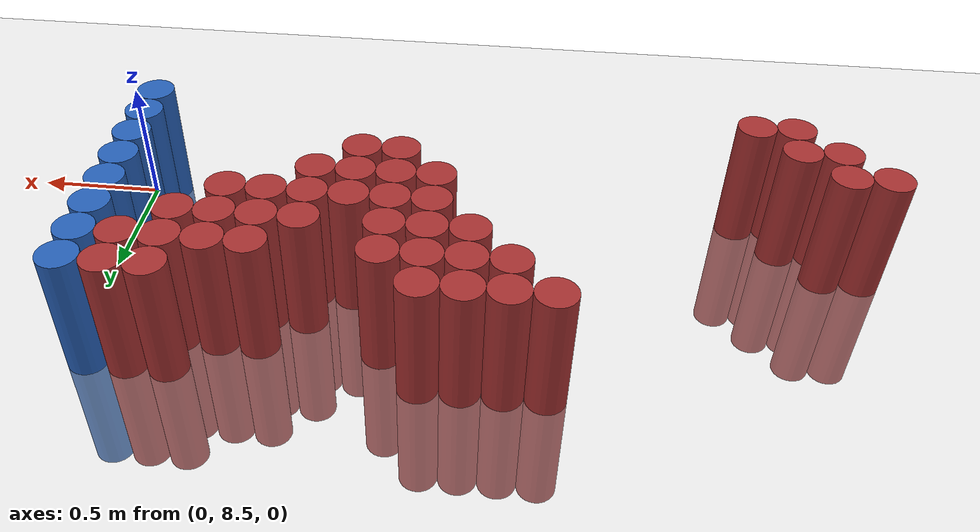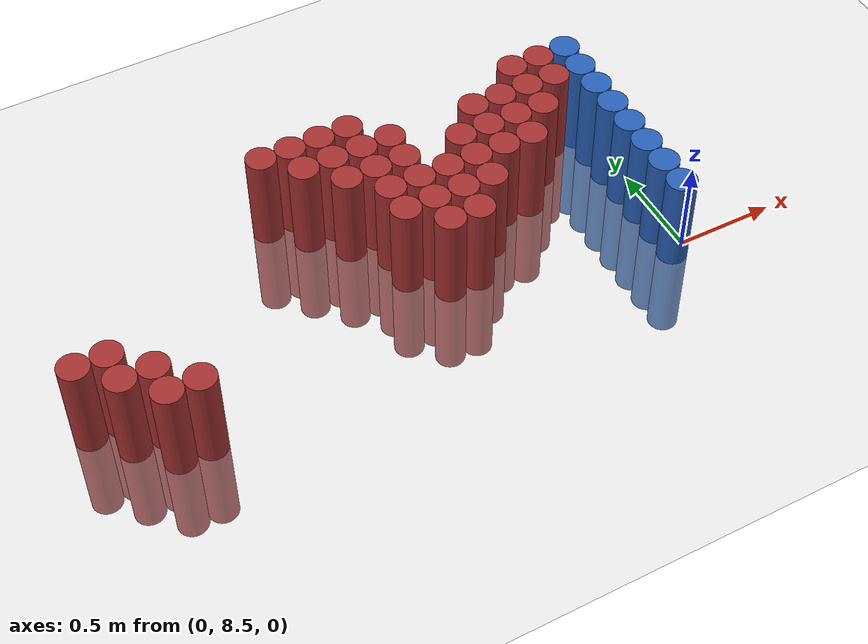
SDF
<sdf version="1.6">
 <world name="default">
  <model name="ground_plane">
   <static>1</static>
   <link name="link">
    <collision name="collision">
     <geometry><plane><normal>0 0 1</normal><size>100 100</size></plane></geometry>
     <surface><friction><ode><mu>100</mu><mu2>50</mu2></ode></friction></surface>
    </collision>
    <visual name="visual">
     <cast_shadows>0</cast_shadows>
     <geometry><plane><normal>0 0 1</normal><size>100 100</size></plane></geometry>
     <material>
      <script><uri>file://media/materials/scripts/gazebo.material</uri><name>Gazebo/Grey</name></script>
     </material>
    </visual>
   </link>
  </model>
  <model name="unit_cylinder_171">
   <static>1</static>
   <pose>-2.925000 8.775000 0.000000 0.000000 0.000000 0.000000</pose>
   <link name="link">
    <inertial>
     <mass>1</mass>
     <inertia><ixx>0.145833</ixx><ixy>0</ixy><ixz>0</ixz><iyy>0.145833</iyy><iyz>0</iyz><izz>0.125</izz></inertia>
    </inertial>
    <collision name="collision">
     <geometry><cylinder><radius>0.075000</radius><length>1</length></cylinder></geometry>
    </collision>
    <visual name="visual">
     <geometry><cylinder><radius>0.075000</radius><length>1</length></cylinder></geometry>
     <material>
      <ambient>0.648000 0.192000 0.192000 1</ambient>
      <diffuse>0.648000 0.192000 0.192000 1</diffuse>
     </material>
     <material>
      <script><name>Gazebo/Grey</name><uri>file://media/materials/scripts/gazebo.material</uri></script>
     </material>
    </visual>
   </link>
  </model>
  <model name="unit_cylinder_173">
   <static>1</static>
   <pose>-2.775000 8.625000 0.000000 0.000000 0.000000 0.000000</pose>
   <link name="link">
    <inertial>
     <mass>1</mass>
     <inertia><ixx>0.145833</ixx><ixy>0</ixy><ixz>0</ixz><iyy>0.145833</iyy><iyz>0</iyz><izz>0.125</izz></inertia>
    </inertial>
    <collision name="collision">
     <geometry><cylinder><radius>0.075000</radius><length>1</length></cylinder></geometry>
    </collision>
    <visual name="visual">
     <geometry><cylinder><radius>0.075000</radius><length>1</length></cylinder></geometry>
     <material>
      <ambient>0.648000 0.192000 0.192000 1</ambient>
      <diffuse>0.648000 0.192000 0.192000 1</diffuse>
     </material>
     <material>
      <script><name>Gazebo/Grey</name><uri>file://media/materials/scripts/gazebo.material</uri></script>
     </material>
    </visual>
   </link>
  </model>
  <model name="unit_cylinder_174">
   <static>1</static>
   <pose>-2.775000 8.775000 0.000000 0.000000 0.000000 0.000000</pose>
   <link name="link">
    <inertial>
     <mass>1</mass>
     <inertia><ixx>0.145833</ixx><ixy>0</ixy><ixz>0</ixz><iyy>0.145833</iyy><iyz>0</iyz><izz>0.125</izz></inertia>
    </inertial>
    <collision name="collision">
     <geometry><cylinder><radius>0.075000</radius><length>1</length></cylinder></geometry>
    </collision>
    <visual name="visual">
     <geometry><cylinder><radius>0.075000</radius><length>1</length></cylinder></geometry>
     <material>
      <ambient>0.648000 0.192000 0.192000 1</ambient>
      <diffuse>0.648000 0.192000 0.192000 1</diffuse>
     </material>
     <material>
      <script><name>Gazebo/Grey</name><uri>file://media/materials/scripts/gazebo.material</uri></script>
     </material>
    </visual>
   </link>
  </model>
  <model name="unit_cylinder_177">
   <static>1</static>
   <pose>-2.625000 8.475000 0.000000 0.000000 0.000000 0.000000</pose>
   <link name="link">
    <inertial>
     <mass>1</mass>
     <inertia><ixx>0.145833</ixx><ixy>0</ixy><ixz>0</ixz><iyy>0.145833</iyy><iyz>0</iyz><izz>0.125</izz></inertia>
    </inertial>
    <collision name="collision">
     <geometry><cylinder><radius>0.075000</radius><length>1</length></cylinder></geometry>
    </collision>
    <visual name="visual">
     <geometry><cylinder><radius>0.075000</radius><length>1</length></cylinder></geometry>
     <material>
      <ambient>0.648000 0.192000 0.192000 1</ambient>
      <diffuse>0.648000 0.192000 0.192000 1</diffuse>
     </material>
     <material>
      <script><name>Gazebo/Grey</name><uri>file://media/materials/scripts/gazebo.material</uri></script>
     </material>
    </visual>
   </link>
  </model>
  <model name="unit_cylinder_178">
   <static>1</static>
   <pose>-2.625000 8.625000 0.000000 0.000000 0.000000 0.000000</pose>
   <link name="link">
    <inertial>
     <mass>1</mass>
     <inertia><ixx>0.145833</ixx><ixy>0</ixy><ixz>0</ixz><iyy>0.145833</iyy><iyz>0</iyz><izz>0.125</izz></inertia>
    </inertial>
    <collision name="collision">
     <geometry><cylinder><radius>0.075000</radius><length>1</length></cylinder></geometry>
    </collision>
    <visual name="visual">
     <geometry><cylinder><radius>0.075000</radius><length>1</length></cylinder></geometry>
     <material>
      <ambient>0.648000 0.192000 0.192000 1</ambient>
      <diffuse>0.648000 0.192000 0.192000 1</diffuse>
     </material>
     <material>
      <script><name>Gazebo/Grey</name><uri>file://media/materials/scripts/gazebo.material</uri></script>
     </material>
    </visual>
   </link>
  </model>
  <model name="unit_cylinder_186">
   <static>1</static>
   <pose>-2.475000 8.475000 0.000000 0.000000 0.000000 0.000000</pose>
   <link name="link">
    <inertial>
     <mass>1</mass>
     <inertia><ixx>0.145833</ixx><ixy>0</ixy><ixz>0</ixz><iyy>0.145833</iyy><iyz>0</iyz><izz>0.125</izz></inertia>
    </inertial>
    <collision name="collision">
     <geometry><cylinder><radius>0.075000</radius><length>1</length></cylinder></geometry>
    </collision>
    <visual name="visual">
     <geometry><cylinder><radius>0.075000</radius><length>1</length></cylinder></geometry>
     <material>
      <ambient>0.648000 0.192000 0.192000 1</ambient>
      <diffuse>0.648000 0.192000 0.192000 1</diffuse>
     </material>
     <material>
      <script><name>Gazebo/Grey</name><uri>file://media/materials/scripts/gazebo.material</uri></script>
     </material>
    </visual>
   </link>
  </model>
  <model name="unit_cylinder_210">
   <static>1</static>
   <pose>-1.725000 9.525000 0.000000 0.000000 0.000000 0.000000</pose>
   <link name="link">
    <inertial>
     <mass>1</mass>
     <inertia><ixx>0.145833</ixx><ixy>0</ixy><ixz>0</ixz><iyy>0.145833</iyy><iyz>0</iyz><izz>0.125</izz></inertia>
    </inertial>
    <collision name="collision">
     <geometry><cylinder><radius>0.075000</radius><length>1</length></cylinder></geometry>
    </collision>
    <visual name="visual">
     <geometry><cylinder><radius>0.075000</radius><length>1</length></cylinder></geometry>
     <material>
      <ambient>0.648000 0.192000 0.192000 1</ambient>
      <diffuse>0.648000 0.192000 0.192000 1</diffuse>
     </material>
     <material>
      <script><name>Gazebo/Grey</name><uri>file://media/materials/scripts/gazebo.material</uri></script>
     </material>
    </visual>
   </link>
  </model>
  <model name="unit_cylinder_216">
   <static>1</static>
   <pose>-1.575000 9.375000 0.000000 0.000000 0.000000 0.000000</pose>
   <link name="link">
    <inertial>
     <mass>1</mass>
     <inertia><ixx>0.145833</ixx><ixy>0</ixy><ixz>0</ixz><iyy>0.145833</iyy><iyz>0</iyz><izz>0.125</izz></inertia>
    </inertial>
    <collision name="collision">
     <geometry><cylinder><radius>0.075000</radius><length>1</length></cylinder></geometry>
    </collision>
    <visual name="visual">
     <geometry><cylinder><radius>0.075000</radius><length>1</length></cylinder></geometry>
     <material>
      <ambient>0.648000 0.192000 0.192000 1</ambient>
      <diffuse>0.648000 0.192000 0.192000 1</diffuse>
     </material>
     <material>
      <script><name>Gazebo/Grey</name><uri>file://media/materials/scripts/gazebo.material</uri></script>
     </material>
    </visual>
   </link>
  </model>
  <model name="unit_cylinder_217">
   <static>1</static>
   <pose>-1.575000 9.525000 0.000000 0.000000 0.000000 0.000000</pose>
   <link name="link">
    <inertial>
     <mass>1</mass>
     <inertia><ixx>0.145833</ixx><ixy>0</ixy><ixz>0</ixz><iyy>0.145833</iyy><iyz>0</iyz><izz>0.125</izz></inertia>
    </inertial>
    <collision name="collision">
     <geometry><cylinder><radius>0.075000</radius><length>1</length></cylinder></geometry>
    </collision>
    <visual name="visual">
     <geometry><cylinder><radius>0.075000</radius><length>1</length></cylinder></geometry>
     <material>
      <ambient>0.648000 0.192000 0.192000 1</ambient>
      <diffuse>0.648000 0.192000 0.192000 1</diffuse>
     </material>
     <material>
      <script><name>Gazebo/Grey</name><uri>file://media/materials/scripts/gazebo.material</uri></script>
     </material>
    </visual>
   </link>
  </model>
  <model name="unit_cylinder_221">
   <static>1</static>
   <pose>-1.425000 9.225000 0.000000 0.000000 0.000000 0.000000</pose>
   <link name="link">
    <inertial>
     <mass>1</mass>
     <inertia><ixx>0.145833</ixx><ixy>0</ixy><ixz>0</ixz><iyy>0.145833</iyy><iyz>0</iyz><izz>0.125</izz></inertia>
    </inertial>
    <collision name="collision">
     <geometry><cylinder><radius>0.075000</radius><length>1</length></cylinder></geometry>
    </collision>
    <visual name="visual">
     <geometry><cylinder><radius>0.075000</radius><length>1</length></cylinder></geometry>
     <material>
      <ambient>0.648000 0.192000 0.192000 1</ambient>
      <diffuse>0.648000 0.192000 0.192000 1</diffuse>
     </material>
     <material>
      <script><name>Gazebo/Grey</name><uri>file://media/materials/scripts/gazebo.material</uri></script>
     </material>
    </visual>
   </link>
  </model>
  <model name="unit_cylinder_222">
   <static>1</static>
   <pose>-1.425000 9.375000 0.000000 0.000000 0.000000 0.000000</pose>
   <link name="link">
    <inertial>
     <mass>1</mass>
     <inertia><ixx>0.145833</ixx><ixy>0</ixy><ixz>0</ixz><iyy>0.145833</iyy><iyz>0</iyz><izz>0.125</izz></inertia>
    </inertial>
    <collision name="collision">
     <geometry><cylinder><radius>0.075000</radius><length>1</length></cylinder></geometry>
    </collision>
    <visual name="visual">
     <geometry><cylinder><radius>0.075000</radius><length>1</length></cylinder></geometry>
     <material>
      <ambient>0.648000 0.192000 0.192000 1</ambient>
      <diffuse>0.648000 0.192000 0.192000 1</diffuse>
     </material>
     <material>
      <script><name>Gazebo/Grey</name><uri>file://media/materials/scripts/gazebo.material</uri></script>
     </material>
    </visual>
   </link>
  </model>
  <model name="unit_cylinder_223">
   <static>1</static>
   <pose>-1.425000 9.525000 0.000000 0.000000 0.000000 0.000000</pose>
   <link name="link">
    <inertial>
     <mass>1</mass>
     <inertia><ixx>0.145833</ixx><ixy>0</ixy><ixz>0</ixz><iyy>0.145833</iyy><iyz>0</iyz><izz>0.125</izz></inertia>
    </inertial>
    <collision name="collision">
     <geometry><cylinder><radius>0.075000</radius><length>1</length></cylinder></geometry>
    </collision>
    <visual name="visual">
     <geometry><cylinder><radius>0.075000</radius><length>1</length></cylinder></geometry>
     <material>
      <ambient>0.648000 0.192000 0.192000 1</ambient>
      <diffuse>0.648000 0.192000 0.192000 1</diffuse>
     </material>
     <material>
      <script><name>Gazebo/Grey</name><uri>file://media/materials/scripts/gazebo.material</uri></script>
     </material>
    </visual>
   </link>
  </model>
  <model name="unit_cylinder_224">
   <static>1</static>
   <pose>-1.275000 8.925000 0.000000 0.000000 0.000000 0.000000</pose>
   <link name="link">
    <inertial>
     <mass>1</mass>
     <inertia><ixx>0.145833</ixx><ixy>0</ixy><ixz>0</ixz><iyy>0.145833</iyy><iyz>0</iyz><izz>0.125</izz></inertia>
    </inertial>
    <collision name="collision">
     <geometry><cylinder><radius>0.075000</radius><length>1</length></cylinder></geometry>
    </collision>
    <visual name="visual">
     <geometry><cylinder><radius>0.075000</radius><length>1</length></cylinder></geometry>
     <material>
      <ambient>0.648000 0.192000 0.192000 1</ambient>
      <diffuse>0.648000 0.192000 0.192000 1</diffuse>
     </material>
     <material>
      <script><name>Gazebo/Grey</name><uri>file://media/materials/scripts/gazebo.material</uri></script>
     </material>
    </visual>
   </link>
  </model>
  <model name="unit_cylinder_225">
   <static>1</static>
   <pose>-1.275000 9.075000 0.000000 0.000000 0.000000 0.000000</pose>
   <link name="link">
    <inertial>
     <mass>1</mass>
     <inertia><ixx>0.145833</ixx><ixy>0</ixy><ixz>0</ixz><iyy>0.145833</iyy><iyz>0</iyz><izz>0.125</izz></inertia>
    </inertial>
    <collision name="collision">
     <geometry><cylinder><radius>0.075000</radius><length>1</length></cylinder></geometry>
    </collision>
    <visual name="visual">
     <geometry><cylinder><radius>0.075000</radius><length>1</length></cylinder></geometry>
     <material>
      <ambient>0.648000 0.192000 0.192000 1</ambient>
      <diffuse>0.648000 0.192000 0.192000 1</diffuse>
     </material>
     <material>
      <script><name>Gazebo/Grey</name><uri>file://media/materials/scripts/gazebo.material</uri></script>
     </material>
    </visual>
   </link>
  </model>
  <model name="unit_cylinder_226">
   <static>1</static>
   <pose>-1.275000 9.225000 0.000000 0.000000 0.000000 0.000000</pose>
   <link name="link">
    <inertial>
     <mass>1</mass>
     <inertia><ixx>0.145833</ixx><ixy>0</ixy><ixz>0</ixz><iyy>0.145833</iyy><iyz>0</iyz><izz>0.125</izz></inertia>
    </inertial>
    <collision name="collision">
     <geometry><cylinder><radius>0.075000</radius><length>1</length></cylinder></geometry>
    </collision>
    <visual name="visual">
     <geometry><cylinder><radius>0.075000</radius><length>1</length></cylinder></geometry>
     <material>
      <ambient>0.648000 0.192000 0.192000 1</ambient>
      <diffuse>0.648000 0.192000 0.192000 1</diffuse>
     </material>
     <material>
      <script><name>Gazebo/Grey</name><uri>file://media/materials/scripts/gazebo.material</uri></script>
     </material>
    </visual>
   </link>
  </model>
  <model name="unit_cylinder_227">
   <static>1</static>
   <pose>-1.275000 9.375000 0.000000 0.000000 0.000000 0.000000</pose>
   <link name="link">
    <inertial>
     <mass>1</mass>
     <inertia><ixx>0.145833</ixx><ixy>0</ixy><ixz>0</ixz><iyy>0.145833</iyy><iyz>0</iyz><izz>0.125</izz></inertia>
    </inertial>
    <collision name="collision">
     <geometry><cylinder><radius>0.075000</radius><length>1</length></cylinder></geometry>
    </collision>
    <visual name="visual">
     <geometry><cylinder><radius>0.075000</radius><length>1</length></cylinder></geometry>
     <material>
      <ambient>0.648000 0.192000 0.192000 1</ambient>
      <diffuse>0.648000 0.192000 0.192000 1</diffuse>
     </material>
     <material>
      <script><name>Gazebo/Grey</name><uri>file://media/materials/scripts/gazebo.material</uri></script>
     </material>
    </visual>
   </link>
  </model>
  <model name="unit_cylinder_228">
   <static>1</static>
   <pose>-1.275000 9.525000 0.000000 0.000000 0.000000 0.000000</pose>
   <link name="link">
    <inertial>
     <mass>1</mass>
     <inertia><ixx>0.145833</ixx><ixy>0</ixy><ixz>0</ixz><iyy>0.145833</iyy><iyz>0</iyz><izz>0.125</izz></inertia>
    </inertial>
    <collision name="collision">
     <geometry><cylinder><radius>0.075000</radius><length>1</length></cylinder></geometry>
    </collision>
    <visual name="visual">
     <geometry><cylinder><radius>0.075000</radius><length>1</length></cylinder></geometry>
     <material>
      <ambient>0.648000 0.192000 0.192000 1</ambient>
      <diffuse>0.648000 0.192000 0.192000 1</diffuse>
     </material>
     <material>
      <script><name>Gazebo/Grey</name><uri>file://media/materials/scripts/gazebo.material</uri></script>
     </material>
    </visual>
   </link>
  </model>
  <model name="unit_cylinder_229">
   <static>1</static>
   <pose>-1.125000 8.775000 0.000000 0.000000 0.000000 0.000000</pose>
   <link name="link">
    <inertial>
     <mass>1</mass>
     <inertia><ixx>0.145833</ixx><ixy>0</ixy><ixz>0</ixz><iyy>0.145833</iyy><iyz>0</iyz><izz>0.125</izz></inertia>
    </inertial>
    <collision name="collision">
     <geometry><cylinder><radius>0.075000</radius><length>1</length></cylinder></geometry>
    </collision>
    <visual name="visual">
     <geometry><cylinder><radius>0.075000</radius><length>1</length></cylinder></geometry>
     <material>
      <ambient>0.648000 0.192000 0.192000 1</ambient>
      <diffuse>0.648000 0.192000 0.192000 1</diffuse>
     </material>
     <material>
      <script><name>Gazebo/Grey</name><uri>file://media/materials/scripts/gazebo.material</uri></script>
     </material>
    </visual>
   </link>
  </model>
  <model name="unit_cylinder_230">
   <static>1</static>
   <pose>-1.125000 8.925000 0.000000 0.000000 0.000000 0.000000</pose>
   <link name="link">
    <inertial>
     <mass>1</mass>
     <inertia><ixx>0.145833</ixx><ixy>0</ixy><ixz>0</ixz><iyy>0.145833</iyy><iyz>0</iyz><izz>0.125</izz></inertia>
    </inertial>
    <collision name="collision">
     <geometry><cylinder><radius>0.075000</radius><length>1</length></cylinder></geometry>
    </collision>
    <visual name="visual">
     <geometry><cylinder><radius>0.075000</radius><length>1</length></cylinder></geometry>
     <material>
      <ambient>0.648000 0.192000 0.192000 1</ambient>
      <diffuse>0.648000 0.192000 0.192000 1</diffuse>
     </material>
     <material>
      <script><name>Gazebo/Grey</name><uri>file://media/materials/scripts/gazebo.material</uri></script>
     </material>
    </visual>
   </link>
  </model>
  <model name="unit_cylinder_231">
   <static>1</static>
   <pose>-1.125000 9.075000 0.000000 0.000000 0.000000 0.000000</pose>
   <link name="link">
    <inertial>
     <mass>1</mass>
     <inertia><ixx>0.145833</ixx><ixy>0</ixy><ixz>0</ixz><iyy>0.145833</iyy><iyz>0</iyz><izz>0.125</izz></inertia>
    </inertial>
    <collision name="collision">
     <geometry><cylinder><radius>0.075000</radius><length>1</length></cylinder></geometry>
    </collision>
    <visual name="visual">
     <geometry><cylinder><radius>0.075000</radius><length>1</length></cylinder></geometry>
     <material>
      <ambient>0.648000 0.192000 0.192000 1</ambient>
      <diffuse>0.648000 0.192000 0.192000 1</diffuse>
     </material>
     <material>
      <script><name>Gazebo/Grey</name><uri>file://media/materials/scripts/gazebo.material</uri></script>
     </material>
    </visual>
   </link>
  </model>
  <model name="unit_cylinder_232">
   <static>1</static>
   <pose>-1.125000 9.225000 0.000000 0.000000 0.000000 0.000000</pose>
   <link name="link">
    <inertial>
     <mass>1</mass>
     <inertia><ixx>0.145833</ixx><ixy>0</ixy><ixz>0</ixz><iyy>0.145833</iyy><iyz>0</iyz><izz>0.125</izz></inertia>
    </inertial>
    <collision name="collision">
     <geometry><cylinder><radius>0.075000</radius><length>1</length></cylinder></geometry>
    </collision>
    <visual name="visual">
     <geometry><cylinder><radius>0.075000</radius><length>1</length></cylinder></geometry>
     <material>
      <ambient>0.648000 0.192000 0.192000 1</ambient>
      <diffuse>0.648000 0.192000 0.192000 1</diffuse>
     </material>
     <material>
      <script><name>Gazebo/Grey</name><uri>file://media/materials/scripts/gazebo.material</uri></script>
     </material>
    </visual>
   </link>
  </model>
  <model name="unit_cylinder_233">
   <static>1</static>
   <pose>-1.125000 9.375000 0.000000 0.000000 0.000000 0.000000</pose>
   <link name="link">
    <inertial>
     <mass>1</mass>
     <inertia><ixx>0.145833</ixx><ixy>0</ixy><ixz>0</ixz><iyy>0.145833</iyy><iyz>0</iyz><izz>0.125</izz></inertia>
    </inertial>
    <collision name="collision">
     <geometry><cylinder><radius>0.075000</radius><length>1</length></cylinder></geometry>
    </collision>
    <visual name="visual">
     <geometry><cylinder><radius>0.075000</radius><length>1</length></cylinder></geometry>
     <material>
      <ambient>0.648000 0.192000 0.192000 1</ambient>
      <diffuse>0.648000 0.192000 0.192000 1</diffuse>
     </material>
     <material>
      <script><name>Gazebo/Grey</name><uri>file://media/materials/scripts/gazebo.material</uri></script>
     </material>
    </visual>
   </link>
  </model>
  <model name="unit_cylinder_234">
   <static>1</static>
   <pose>-0.975000 8.775000 0.000000 0.000000 0.000000 0.000000</pose>
   <link name="link">
    <inertial>
     <mass>1</mass>
     <inertia><ixx>0.145833</ixx><ixy>0</ixy><ixz>0</ixz><iyy>0.145833</iyy><iyz>0</iyz><izz>0.125</izz></inertia>
    </inertial>
    <collision name="collision">
     <geometry><cylinder><radius>0.075000</radius><length>1</length></cylinder></geometry>
    </collision>
    <visual name="visual">
     <geometry><cylinder><radius>0.075000</radius><length>1</length></cylinder></geometry>
     <material>
      <ambient>0.648000 0.192000 0.192000 1</ambient>
      <diffuse>0.648000 0.192000 0.192000 1</diffuse>
     </material>
     <material>
      <script><name>Gazebo/Grey</name><uri>file://media/materials/scripts/gazebo.material</uri></script>
     </material>
    </visual>
   </link>
  </model>
  <model name="unit_cylinder_235">
   <static>1</static>
   <pose>-0.975000 8.925000 0.000000 0.000000 0.000000 0.000000</pose>
   <link name="link">
    <inertial>
     <mass>1</mass>
     <inertia><ixx>0.145833</ixx><ixy>0</ixy><ixz>0</ixz><iyy>0.145833</iyy><iyz>0</iyz><izz>0.125</izz></inertia>
    </inertial>
    <collision name="collision">
     <geometry><cylinder><radius>0.075000</radius><length>1</length></cylinder></geometry>
    </collision>
    <visual name="visual">
     <geometry><cylinder><radius>0.075000</radius><length>1</length></cylinder></geometry>
     <material>
      <ambient>0.648000 0.192000 0.192000 1</ambient>
      <diffuse>0.648000 0.192000 0.192000 1</diffuse>
     </material>
     <material>
      <script><name>Gazebo/Grey</name><uri>file://media/materials/scripts/gazebo.material</uri></script>
     </material>
    </visual>
   </link>
  </model>
  <model name="unit_cylinder_236">
   <static>1</static>
   <pose>-0.975000 9.075000 0.000000 0.000000 0.000000 0.000000</pose>
   <link name="link">
    <inertial>
     <mass>1</mass>
     <inertia><ixx>0.145833</ixx><ixy>0</ixy><ixz>0</ixz><iyy>0.145833</iyy><iyz>0</iyz><izz>0.125</izz></inertia>
    </inertial>
    <collision name="collision">
     <geometry><cylinder><radius>0.075000</radius><length>1</length></cylinder></geometry>
    </collision>
    <visual name="visual">
     <geometry><cylinder><radius>0.075000</radius><length>1</length></cylinder></geometry>
     <material>
      <ambient>0.648000 0.192000 0.192000 1</ambient>
      <diffuse>0.648000 0.192000 0.192000 1</diffuse>
     </material>
     <material>
      <script><name>Gazebo/Grey</name><uri>file://media/materials/scripts/gazebo.material</uri></script>
     </material>
    </visual>
   </link>
  </model>
  <model name="unit_cylinder_237">
   <static>1</static>
   <pose>-0.825000 8.925000 0.000000 0.000000 0.000000 0.000000</pose>
   <link name="link">
    <inertial>
     <mass>1</mass>
     <inertia><ixx>0.145833</ixx><ixy>0</ixy><ixz>0</ixz><iyy>0.145833</iyy><iyz>0</iyz><izz>0.125</izz></inertia>
    </inertial>
    <collision name="collision">
     <geometry><cylinder><radius>0.075000</radius><length>1</length></cylinder></geometry>
    </collision>
    <visual name="visual">
     <geometry><cylinder><radius>0.075000</radius><length>1</length></cylinder></geometry>
     <material>
      <ambient>0.648000 0.192000 0.192000 1</ambient>
      <diffuse>0.648000 0.192000 0.192000 1</diffuse>
     </material>
     <material>
      <script><name>Gazebo/Grey</name><uri>file://media/materials/scripts/gazebo.material</uri></script>
     </material>
    </visual>
   </link>
  </model>
  <model name="unit_cylinder_238">
   <static>1</static>
   <pose>-0.825000 9.075000 0.000000 0.000000 0.000000 0.000000</pose>
   <link name="link">
    <inertial>
     <mass>1</mass>
     <inertia><ixx>0.145833</ixx><ixy>0</ixy><ixz>0</ixz><iyy>0.145833</iyy><iyz>0</iyz><izz>0.125</izz></inertia>
    </inertial>
    <collision name="collision">
     <geometry><cylinder><radius>0.075000</radius><length>1</length></cylinder></geometry>
    </collision>
    <visual name="visual">
     <geometry><cylinder><radius>0.075000</radius><length>1</length></cylinder></geometry>
     <material>
      <ambient>0.648000 0.192000 0.192000 1</ambient>
      <diffuse>0.648000 0.192000 0.192000 1</diffuse>
     </material>
     <material>
      <script><name>Gazebo/Grey</name><uri>file://media/materials/scripts/gazebo.material</uri></script>
     </material>
    </visual>
   </link>
  </model>
  <model name="unit_cylinder_239">
   <static>1</static>
   <pose>-0.825000 9.225000 0.000000 0.000000 0.000000 0.000000</pose>
   <link name="link">
    <inertial>
     <mass>1</mass>
     <inertia><ixx>0.145833</ixx><ixy>0</ixy><ixz>0</ixz><iyy>0.145833</iyy><iyz>0</iyz><izz>0.125</izz></inertia>
    </inertial>
    <collision name="collision">
     <geometry><cylinder><radius>0.075000</radius><length>1</length></cylinder></geometry>
    </collision>
    <visual name="visual">
     <geometry><cylinder><radius>0.075000</radius><length>1</length></cylinder></geometry>
     <material>
      <ambient>0.648000 0.192000 0.192000 1</ambient>
      <diffuse>0.648000 0.192000 0.192000 1</diffuse>
     </material>
     <material>
      <script><name>Gazebo/Grey</name><uri>file://media/materials/scripts/gazebo.material</uri></script>
     </material>
    </visual>
   </link>
  </model>
  <model name="unit_cylinder_240">
   <static>1</static>
   <pose>-0.675000 9.075000 0.000000 0.000000 0.000000 0.000000</pose>
   <link name="link">
    <inertial>
     <mass>1</mass>
     <inertia><ixx>0.145833</ixx><ixy>0</ixy><ixz>0</ixz><iyy>0.145833</iyy><iyz>0</iyz><izz>0.125</izz></inertia>
    </inertial>
    <collision name="collision">
     <geometry><cylinder><radius>0.075000</radius><length>1</length></cylinder></geometry>
    </collision>
    <visual name="visual">
     <geometry><cylinder><radius>0.075000</radius><length>1</length></cylinder></geometry>
     <material>
      <ambient>0.648000 0.192000 0.192000 1</ambient>
      <diffuse>0.648000 0.192000 0.192000 1</diffuse>
     </material>
     <material>
      <script><name>Gazebo/Grey</name><uri>file://media/materials/scripts/gazebo.material</uri></script>
     </material>
    </visual>
   </link>
  </model>
  <model name="unit_cylinder_241">
   <static>1</static>
   <pose>-0.675000 9.225000 0.000000 0.000000 0.000000 0.000000</pose>
   <link name="link">
    <inertial>
     <mass>1</mass>
     <inertia><ixx>0.145833</ixx><ixy>0</ixy><ixz>0</ixz><iyy>0.145833</iyy><iyz>0</iyz><izz>0.125</izz></inertia>
    </inertial>
    <collision name="collision">
     <geometry><cylinder><radius>0.075000</radius><length>1</length></cylinder></geometry>
    </collision>
    <visual name="visual">
     <geometry><cylinder><radius>0.075000</radius><length>1</length></cylinder></geometry>
     <material>
      <ambient>0.648000 0.192000 0.192000 1</ambient>
      <diffuse>0.648000 0.192000 0.192000 1</diffuse>
     </material>
     <material>
      <script><name>Gazebo/Grey</name><uri>file://media/materials/scripts/gazebo.material</uri></script>
     </material>
    </visual>
   </link>
  </model>
  <model name="unit_cylinder_242">
   <static>1</static>
   <pose>-0.675000 9.375000 0.000000 0.000000 0.000000 0.000000</pose>
   <link name="link">
    <inertial>
     <mass>1</mass>
     <inertia><ixx>0.145833</ixx><ixy>0</ixy><ixz>0</ixz><iyy>0.145833</iyy><iyz>0</iyz><izz>0.125</izz></inertia>
    </inertial>
    <collision name="collision">
     <geometry><cylinder><radius>0.075000</radius><length>1</length></cylinder></geometry>
    </collision>
    <visual name="visual">
     <geometry><cylinder><radius>0.075000</radius><length>1</length></cylinder></geometry>
     <material>
      <ambient>0.648000 0.192000 0.192000 1</ambient>
      <diffuse>0.648000 0.192000 0.192000 1</diffuse>
     </material>
     <material>
      <script><name>Gazebo/Grey</name><uri>file://media/materials/scripts/gazebo.material</uri></script>
     </material>
    </visual>
   </link>
  </model>
  <model name="unit_cylinder_243">
   <static>1</static>
   <pose>-0.525000 9.075000 0.000000 0.000000 0.000000 0.000000</pose>
   <link name="link">
    <inertial>
     <mass>1</mass>
     <inertia><ixx>0.145833</ixx><ixy>0</ixy><ixz>0</ixz><iyy>0.145833</iyy><iyz>0</iyz><izz>0.125</izz></inertia>
    </inertial>
    <collision name="collision">
     <geometry><cylinder><radius>0.075000</radius><length>1</length></cylinder></geometry>
    </collision>
    <visual name="visual">
     <geometry><cylinder><radius>0.075000</radius><length>1</length></cylinder></geometry>
     <material>
      <ambient>0.648000 0.192000 0.192000 1</ambient>
      <diffuse>0.648000 0.192000 0.192000 1</diffuse>
     </material>
     <material>
      <script><name>Gazebo/Grey</name><uri>file://media/materials/scripts/gazebo.material</uri></script>
     </material>
    </visual>
   </link>
  </model>
  <model name="unit_cylinder_244">
   <static>1</static>
   <pose>-0.525000 9.225000 0.000000 0.000000 0.000000 0.000000</pose>
   <link name="link">
    <inertial>
     <mass>1</mass>
     <inertia><ixx>0.145833</ixx><ixy>0</ixy><ixz>0</ixz><iyy>0.145833</iyy><iyz>0</iyz><izz>0.125</izz></inertia>
    </inertial>
    <collision name="collision">
     <geometry><cylinder><radius>0.075000</radius><length>1</length></cylinder></geometry>
    </collision>
    <visual name="visual">
     <geometry><cylinder><radius>0.075000</radius><length>1</length></cylinder></geometry>
     <material>
      <ambient>0.648000 0.192000 0.192000 1</ambient>
      <diffuse>0.648000 0.192000 0.192000 1</diffuse>
     </material>
     <material>
      <script><name>Gazebo/Grey</name><uri>file://media/materials/scripts/gazebo.material</uri></script>
     </material>
    </visual>
   </link>
  </model>
  <model name="unit_cylinder_245">
   <static>1</static>
   <pose>-0.525000 9.375000 0.000000 0.000000 0.000000 0.000000</pose>
   <link name="link">
    <inertial>
     <mass>1</mass>
     <inertia><ixx>0.145833</ixx><ixy>0</ixy><ixz>0</ixz><iyy>0.145833</iyy><iyz>0</iyz><izz>0.125</izz></inertia>
    </inertial>
    <collision name="collision">
     <geometry><cylinder><radius>0.075000</radius><length>1</length></cylinder></geometry>
    </collision>
    <visual name="visual">
     <geometry><cylinder><radius>0.075000</radius><length>1</length></cylinder></geometry>
     <material>
      <ambient>0.648000 0.192000 0.192000 1</ambient>
      <diffuse>0.648000 0.192000 0.192000 1</diffuse>
     </material>
     <material>
      <script><name>Gazebo/Grey</name><uri>file://media/materials/scripts/gazebo.material</uri></script>
     </material>
    </visual>
   </link>
  </model>
  <model name="unit_cylinder_246">
   <static>1</static>
   <pose>-0.375000 9.225000 0.000000 0.000000 0.000000 0.000000</pose>
   <link name="link">
    <inertial>
     <mass>1</mass>
     <inertia><ixx>0.145833</ixx><ixy>0</ixy><ixz>0</ixz><iyy>0.145833</iyy><iyz>0</iyz><izz>0.125</izz></inertia>
    </inertial>
    <collision name="collision">
     <geometry><cylinder><radius>0.075000</radius><length>1</length></cylinder></geometry>
    </collision>
    <visual name="visual">
     <geometry><cylinder><radius>0.075000</radius><length>1</length></cylinder></geometry>
     <material>
      <ambient>0.648000 0.192000 0.192000 1</ambient>
      <diffuse>0.648000 0.192000 0.192000 1</diffuse>
     </material>
     <material>
      <script><name>Gazebo/Grey</name><uri>file://media/materials/scripts/gazebo.material</uri></script>
     </material>
    </visual>
   </link>
  </model>
  <model name="unit_cylinder_247">
   <static>1</static>
   <pose>-0.375000 9.375000 0.000000 0.000000 0.000000 0.000000</pose>
   <link name="link">
    <inertial>
     <mass>1</mass>
     <inertia><ixx>0.145833</ixx><ixy>0</ixy><ixz>0</ixz><iyy>0.145833</iyy><iyz>0</iyz><izz>0.125</izz></inertia>
    </inertial>
    <collision name="collision">
     <geometry><cylinder><radius>0.075000</radius><length>1</length></cylinder></geometry>
    </collision>
    <visual name="visual">
     <geometry><cylinder><radius>0.075000</radius><length>1</length></cylinder></geometry>
     <material>
      <ambient>0.648000 0.192000 0.192000 1</ambient>
      <diffuse>0.648000 0.192000 0.192000 1</diffuse>
     </material>
     <material>
      <script><name>Gazebo/Grey</name><uri>file://media/materials/scripts/gazebo.material</uri></script>
     </material>
    </visual>
   </link>
  </model>
  <model name="unit_cylinder_248">
   <static>1</static>
   <pose>-0.375000 9.525000 0.000000 0.000000 0.000000 0.000000</pose>
   <link name="link">
    <inertial>
     <mass>1</mass>
     <inertia><ixx>0.145833</ixx><ixy>0</ixy><ixz>0</ixz><iyy>0.145833</iyy><iyz>0</iyz><izz>0.125</izz></inertia>
    </inertial>
    <collision name="collision">
     <geometry><cylinder><radius>0.075000</radius><length>1</length></cylinder></geometry>
    </collision>
    <visual name="visual">
     <geometry><cylinder><radius>0.075000</radius><length>1</length></cylinder></geometry>
     <material>
      <ambient>0.648000 0.192000 0.192000 1</ambient>
      <diffuse>0.648000 0.192000 0.192000 1</diffuse>
     </material>
     <material>
      <script><name>Gazebo/Grey</name><uri>file://media/materials/scripts/gazebo.material</uri></script>
     </material>
    </visual>
   </link>
  </model>
  <model name="unit_cylinder_249">
   <static>1</static>
   <pose>-0.225000 9.375000 0.000000 0.000000 0.000000 0.000000</pose>
   <link name="link">
    <inertial>
     <mass>1</mass>
     <inertia><ixx>0.145833</ixx><ixy>0</ixy><ixz>0</ixz><iyy>0.145833</iyy><iyz>0</iyz><izz>0.125</izz></inertia>
    </inertial>
    <collision name="collision">
     <geometry><cylinder><radius>0.075000</radius><length>1</length></cylinder></geometry>
    </collision>
    <visual name="visual">
     <geometry><cylinder><radius>0.075000</radius><length>1</length></cylinder></geometry>
     <material>
      <ambient>0.648000 0.192000 0.192000 1</ambient>
      <diffuse>0.648000 0.192000 0.192000 1</diffuse>
     </material>
     <material>
      <script><name>Gazebo/Grey</name><uri>file://media/materials/scripts/gazebo.material</uri></script>
     </material>
    </visual>
   </link>
  </model>
  <model name="unit_cylinder_250">
   <static>1</static>
   <pose>-0.225000 9.525000 0.000000 0.000000 0.000000 0.000000</pose>
   <link name="link">
    <inertial>
     <mass>1</mass>
     <inertia><ixx>0.145833</ixx><ixy>0</ixy><ixz>0</ixz><iyy>0.145833</iyy><iyz>0</iyz><izz>0.125</izz></inertia>
    </inertial>
    <collision name="collision">
     <geometry><cylinder><radius>0.075000</radius><length>1</length></cylinder></geometry>
    </collision>
    <visual name="visual">
     <geometry><cylinder><radius>0.075000</radius><length>1</length></cylinder></geometry>
     <material>
      <ambient>0.648000 0.192000 0.192000 1</ambient>
      <diffuse>0.648000 0.192000 0.192000 1</diffuse>
     </material>
     <material>
      <script><name>Gazebo/Grey</name><uri>file://media/materials/scripts/gazebo.material</uri></script>
     </material>
    </visual>
   </link>
  </model>
  <model name="unit_cylinder_273">
   <static>1</static>
   <pose>-0.075000 8.475000 0.000000 0.000000 0.000000 0.000000</pose>
   <link name="link">
    <inertial>
     <mass>1</mass>
     <inertia><ixx>0.145833</ixx><ixy>0</ixy><ixz>0</ixz><iyy>0.145833</iyy><iyz>0</iyz><izz>0.125</izz></inertia>
    </inertial>
    <collision name="collision">
     <geometry><cylinder><radius>0.075000</radius><length>1</length></cylinder></geometry>
    </collision>
    <visual name="visual">
     <geometry><cylinder><radius>0.075000</radius><length>1</length></cylinder></geometry>
     <material>
      <ambient>0.152000 0.379000 0.720000 1</ambient>
      <diffuse>0.152000 0.379000 0.720000 1</diffuse>
     </material>
     <material>
      <script><name>Gazebo/Grey</name><uri>file://media/materials/scripts/gazebo.material</uri></script>
     </material>
    </visual>
   </link>
  </model>
  <model name="unit_cylinder_274">
   <static>1</static>
   <pose>-0.075000 8.625000 0.000000 0.000000 0.000000 0.000000</pose>
   <link name="link">
    <inertial>
     <mass>1</mass>
     <inertia><ixx>0.145833</ixx><ixy>0</ixy><ixz>0</ixz><iyy>0.145833</iyy><iyz>0</iyz><izz>0.125</izz></inertia>
    </inertial>
    <collision name="collision">
     <geometry><cylinder><radius>0.075000</radius><length>1</length></cylinder></geometry>
    </collision>
    <visual name="visual">
     <geometry><cylinder><radius>0.075000</radius><length>1</length></cylinder></geometry>
     <material>
      <ambient>0.152000 0.379000 0.720000 1</ambient>
      <diffuse>0.152000 0.379000 0.720000 1</diffuse>
     </material>
     <material>
      <script><name>Gazebo/Grey</name><uri>file://media/materials/scripts/gazebo.material</uri></script>
     </material>
    </visual>
   </link>
  </model>
  <model name="unit_cylinder_275">
   <static>1</static>
   <pose>-0.075000 8.775000 0.000000 0.000000 0.000000 0.000000</pose>
   <link name="link">
    <inertial>
     <mass>1</mass>
     <inertia><ixx>0.145833</ixx><ixy>0</ixy><ixz>0</ixz><iyy>0.145833</iyy><iyz>0</iyz><izz>0.125</izz></inertia>
    </inertial>
    <collision name="collision">
     <geometry><cylinder><radius>0.075000</radius><length>1</length></cylinder></geometry>
    </collision>
    <visual name="visual">
     <geometry><cylinder><radius>0.075000</radius><length>1</length></cylinder></geometry>
     <material>
      <ambient>0.152000 0.379000 0.720000 1</ambient>
      <diffuse>0.152000 0.379000 0.720000 1</diffuse>
     </material>
     <material>
      <script><name>Gazebo/Grey</name><uri>file://media/materials/scripts/gazebo.material</uri></script>
     </material>
    </visual>
   </link>
  </model>
  <model name="unit_cylinder_276">
   <static>1</static>
   <pose>-0.075000 8.925000 0.000000 0.000000 0.000000 0.000000</pose>
   <link name="link">
    <inertial>
     <mass>1</mass>
     <inertia><ixx>0.145833</ixx><ixy>0</ixy><ixz>0</ixz><iyy>0.145833</iyy><iyz>0</iyz><izz>0.125</izz></inertia>
    </inertial>
    <collision name="collision">
     <geometry><cylinder><radius>0.075000</radius><length>1</length></cylinder></geometry>
    </collision>
    <visual name="visual">
     <geometry><cylinder><radius>0.075000</radius><length>1</length></cylinder></geometry>
     <material>
      <ambient>0.152000 0.379000 0.720000 1</ambient>
      <diffuse>0.152000 0.379000 0.720000 1</diffuse>
     </material>
     <material>
      <script><name>Gazebo/Grey</name><uri>file://media/materials/scripts/gazebo.material</uri></script>
     </material>
    </visual>
   </link>
  </model>
  <model name="unit_cylinder_277">
   <static>1</static>
   <pose>-0.075000 9.075000 0.000000 0.000000 0.000000 0.000000</pose>
   <link name="link">
    <inertial>
     <mass>1</mass>
     <inertia><ixx>0.145833</ixx><ixy>0</ixy><ixz>0</ixz><iyy>0.145833</iyy><iyz>0</iyz><izz>0.125</izz></inertia>
    </inertial>
    <collision name="collision">
     <geometry><cylinder><radius>0.075000</radius><length>1</length></cylinder></geometry>
    </collision>
    <visual name="visual">
     <geometry><cylinder><radius>0.075000</radius><length>1</length></cylinder></geometry>
     <material>
      <ambient>0.152000 0.379000 0.720000 1</ambient>
      <diffuse>0.152000 0.379000 0.720000 1</diffuse>
     </material>
     <material>
      <script><name>Gazebo/Grey</name><uri>file://media/materials/scripts/gazebo.material</uri></script>
     </material>
    </visual>
   </link>
  </model>
  <model name="unit_cylinder_278">
   <static>1</static>
   <pose>-0.075000 9.225000 0.000000 0.000000 0.000000 0.000000</pose>
   <link name="link">
    <inertial>
     <mass>1</mass>
     <inertia><ixx>0.145833</ixx><ixy>0</ixy><ixz>0</ixz><iyy>0.145833</iyy><iyz>0</iyz><izz>0.125</izz></inertia>
    </inertial>
    <collision name="collision">
     <geometry><cylinder><radius>0.075000</radius><length>1</length></cylinder></geometry>
    </collision>
    <visual name="visual">
     <geometry><cylinder><radius>0.075000</radius><length>1</length></cylinder></geometry>
     <material>
      <ambient>0.152000 0.379000 0.720000 1</ambient>
      <diffuse>0.152000 0.379000 0.720000 1</diffuse>
     </material>
     <material>
      <script><name>Gazebo/Grey</name><uri>file://media/materials/scripts/gazebo.material</uri></script>
     </material>
    </visual>
   </link>
  </model>
  <model name="unit_cylinder_279">
   <static>1</static>
   <pose>-0.075000 9.375000 0.000000 0.000000 0.000000 0.000000</pose>
   <link name="link">
    <inertial>
     <mass>1</mass>
     <inertia><ixx>0.145833</ixx><ixy>0</ixy><ixz>0</ixz><iyy>0.145833</iyy><iyz>0</iyz><izz>0.125</izz></inertia>
    </inertial>
    <collision name="collision">
     <geometry><cylinder><radius>0.075000</radius><length>1</length></cylinder></geometry>
    </collision>
    <visual name="visual">
     <geometry><cylinder><radius>0.075000</radius><length>1</length></cylinder></geometry>
     <material>
      <ambient>0.152000 0.379000 0.720000 1</ambient>
      <diffuse>0.152000 0.379000 0.720000 1</diffuse>
     </material>
     <material>
      <script><name>Gazebo/Grey</name><uri>file://media/materials/scripts/gazebo.material</uri></script>
     </material>
    </visual>
   </link>
  </model>
  <model name="unit_cylinder_280">
   <static>1</static>
   <pose>-0.075000 9.525000 0.000000 0.000000 0.000000 0.000000</pose>
   <link name="link">
    <inertial>
     <mass>1</mass>
     <inertia><ixx>0.145833</ixx><ixy>0</ixy><ixz>0</ixz><iyy>0.145833</iyy><iyz>0</iyz><izz>0.125</izz></inertia>
    </inertial>
    <collision name="collision">
     <geometry><cylinder><radius>0.075000</radius><length>1</length></cylinder></geometry>
    </collision>
    <visual name="visual">
     <geometry><cylinder><radius>0.075000</radius><length>1</length></cylinder></geometry>
     <material>
      <ambient>0.152000 0.379000 0.720000 1</ambient>
      <diffuse>0.152000 0.379000 0.720000 1</diffuse>
     </material>
     <material>
      <script><name>Gazebo/Grey</name><uri>file://media/materials/scripts/gazebo.material</uri></script>
     </material>
    </visual>
   </link>
  </model>
 </world>
</sdf>
